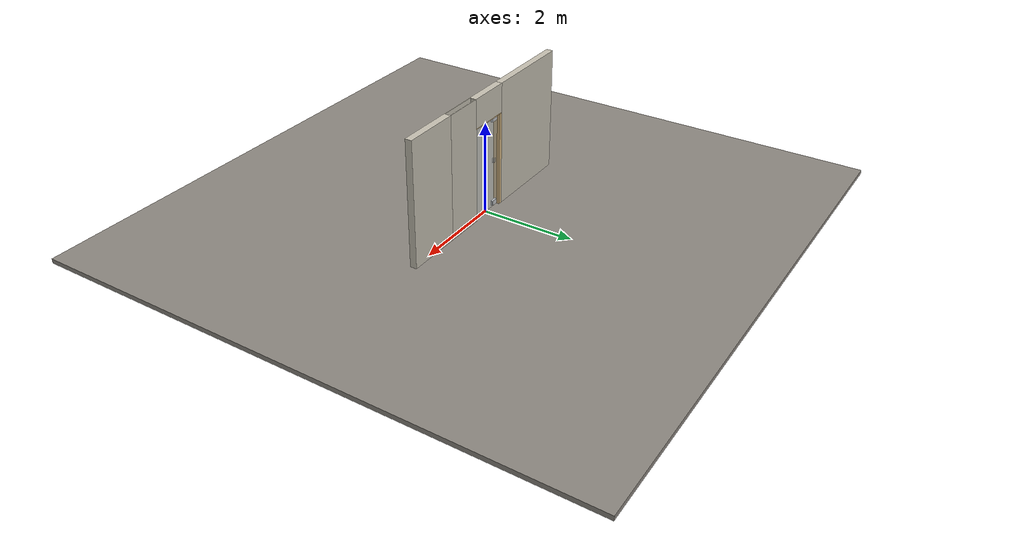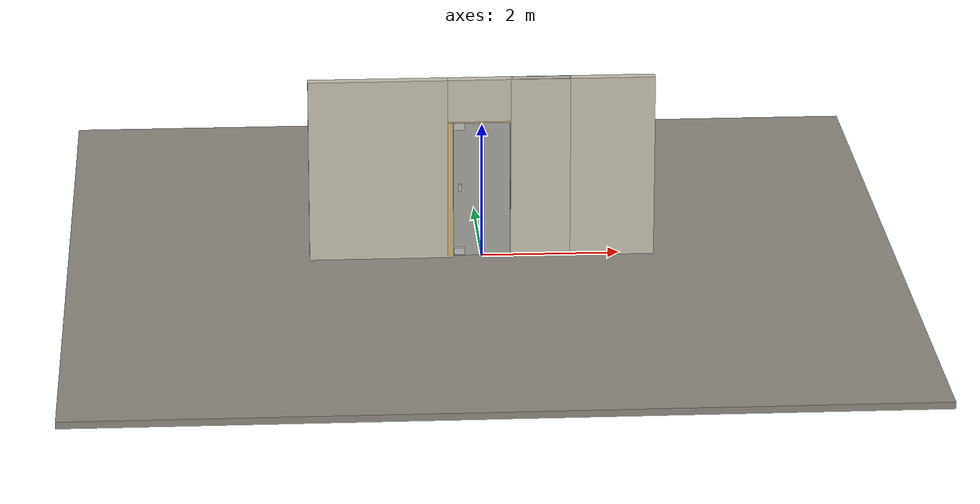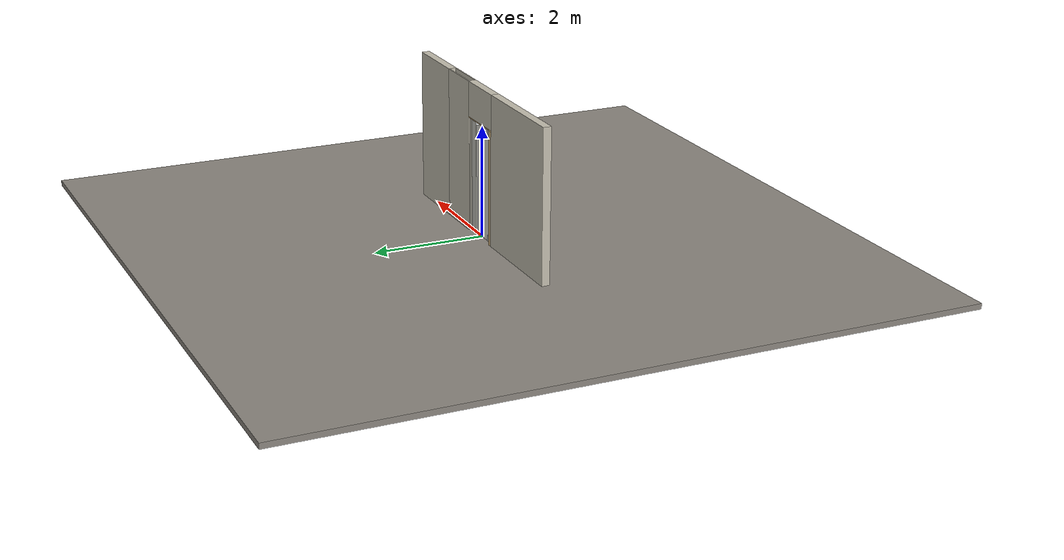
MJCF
<?xml version="1.0" ?>
<mujoco model="db0274_sliding_single_simple">
  <compiler angle="radian" meshdir="../../hardware" texturedir="../../textures" autolimits="true" inertiafromgeom="false"/>
  <option timestep="0.002" integrator="implicitfast" cone="elliptic" impratio="10" noslip_iterations="3">
    <flag multiccd="enable"/>
  </option>
  <size memory="16M"/>
  <default>
    <geom condim="4" solref="0.005 1" solimp="0.95 0.99 0.001"/>
    <joint solreflimit="0.005 1" solimplimit="0.95 0.99 0.001"/>
    <tendon solreflimit="0.005 1"/>
    <equality solref="0.002 1"/>
  </default>
  <visual>
    <headlight ambient="0.4 0.4 0.4" diffuse="0.7 0.7 0.7" specular="0.2 0.2 0.2"/>
    <quality shadowsize="4096"/>
    <map znear="0.01" zfar="60"/>
  </visual>
  <asset>
    <material name="mat_floor" rgba="0.55 0.53 0.5 1" specular="0.2" shininess="0.15" reflectance="0"/>
    <material name="mat_wall" rgba="0.78 0.76 0.7 1" specular="0.2" shininess="0.1" reflectance="0"/>
    <material name="mat_frame" rgba="0.82 0.7 0.5 1" specular="0.2" shininess="0.45" reflectance="0"/>
    <material name="mat_track" rgba="0.8 0.81 0.83 1" specular="0.8" shininess="0.6" reflectance="0.4"/>
    <material name="mat_leaf" rgba="0.85 0.92 0.95 0.25" specular="0.2" shininess="0.95" reflectance="0.1"/>
    <material name="mat_glass_leaf" rgba="0.85 0.92 0.95 0.25" specular="0.2" shininess="0.95" reflectance="0.1"/>
    <material name="mat_patch" rgba="0.75 0.76 0.77 1" specular="0.8" shininess="0.65" reflectance="0.4"/>
    <material name="mat_roller" rgba="0.65 0.66 0.68 1" specular="0.74" shininess="0.5" reflectance="0.36"/>
    <material name="mat_op_nickel_satin" rgba="0.72 0.7 0.66 1" specular="0.8" shininess="0.65" reflectance="0.4"/>
    <material name="mat_hook" rgba="0.75 0.76 0.77 1" specular="0.8" shininess="0.65" reflectance="0.4"/>
    <texture name="skybox" type="skybox" builtin="gradient" rgb1="0.6 0.7 0.85" rgb2="0.9 0.92 0.95" width="256" height="256"/>
  </asset>
  <worldbody>
    <light name="sun" pos="1.5 -2.5 4" dir="-0.3 0.5 -0.8" directional="true" diffuse="0.8 0.8 0.8" specular="0.3 0.3 0.3" castshadow="true"/>
    <light name="fill" pos="-1.5 2.5 3" dir="0.3 -0.5 -0.7" directional="true" diffuse="0.35 0.35 0.4" castshadow="false"/>
    <camera name="robot_view" pos="0 -2.54875 1.73965" xyaxes="1 0 0 0 0.26963 0.962964" fovy="52"/>
    <camera name="far_view" pos="0 2.54875 1.73965" xyaxes="-1 0 0 0 -0.26963 0.962964" fovy="52"/>
    <camera name="iso" pos="1.93705 -2.14095 2.14745" xyaxes="0.741536 0.670913 0 -0.242917 0.268487 0.932151" fovy="46"/>
    <camera name="detail_handle" pos="-0.1365 -0.8175 1.33" xyaxes="0.97561 0.219512 0 -0.070934 0.315262 0.94635" fovy="38"/>
    <geom name="floor" type="box" size="6 6 0.05" pos="0 0 -0.05" material="mat_floor" group="0" contype="1" conaffinity="1" friction="0.8 0.005 0.0001" density="2400"/>
    <geom name="wall_left" type="box" size="1.00225 0.0725 1.35" pos="-1.49775 0 1.35" material="mat_wall" group="0" contype="1" conaffinity="1" friction="0.6 0.005 0.0001" density="800"/>
    <geom name="wall_header" type="box" size="0.4655 0.0725 0.3145" pos="-0.03 0 2.3855" material="mat_wall" group="0" contype="1" conaffinity="1" friction="0.6 0.005 0.0001" density="800"/>
    <geom name="pocket_skin_n" type="box" size="0.4315 0.008 1.35" pos="0.848 -0.0645 1.35" material="mat_wall" group="0" contype="1" conaffinity="1" friction="0.6 0.005 0.0001" density="800"/>
    <geom name="pocket_skin_p" type="box" size="0.4315 0.008 1.35" pos="0.848 0.0645 1.35" material="mat_wall" group="0" contype="1" conaffinity="1" friction="0.6 0.005 0.0001" density="800"/>
    <geom name="wall_pocket_far" type="box" size="0.61025 0.0725 1.35" pos="1.88975 0 1.35" material="mat_wall" group="0" contype="1" conaffinity="1" friction="0.6 0.005 0.0001" density="800"/>
    <geom name="jamb_head" type="box" size="0.4355 0.0725 0.0095" pos="0 0 2.0615" material="mat_frame" group="0" contype="1" conaffinity="1" friction="0.6 0.005 0.0001" density="300"/>
    <geom name="track_header" type="box" size="0.8425 0.025 0.04" pos="0.386 0 2.111" material="mat_track" group="0" contype="1" conaffinity="1" friction="0.6 0.005 0.0001" density="2700"/>
    <geom name="jamb_latch_0" type="box" size="0.0395 0.0725 1.026" pos="-0.456 0 1.026" material="mat_frame" group="0" contype="1" conaffinity="1" friction="0.6 0.005 0.0001" density="300"/>
    <geom name="track_header_bracket" type="box" size="0.674 0.01625 0.032" pos="0.386 0.04075 2.111" material="mat_hook" group="1" contype="0" conaffinity="0" density="7850"/>
    <site name="approach_point" pos="0 -1.5 0" quat="1 0 0 0" size="0.05" rgba="0.2 0.9 0.2 0.5" group="4"/>
    <site name="goal_point" pos="0 1.5 0" quat="1 0 0 0" size="0.05" rgba="0.2 0.9 0.2 0.5" group="4"/>
    <site name="door_plane_center" pos="0 0 1.026" quat="1 0 0 0" size="0.02" rgba="0.2 0.9 0.2 0.5" group="4"/>
    <body name="leaf" pos="0 0 0">
      <inertial pos="-0.000511 0 1.02803" mass="30.968798" quat="0.500008 0.500008 0.499992 -0.499992" diaginertia="1.711260716 10.648401762 12.353319087"/>
      <joint name="leaf_slide" type="slide" axis="1 0 0" limited="true" range="0 0.772" damping="3.54844" frictionloss="4.737723" armature="0.5"/>
      <geom name="leaf_glass" type="box" size="0.4065 0.0175 1.016" pos="0 0 1.028" material="mat_glass_leaf" group="0" contype="1" conaffinity="1" friction="0.4 0.005 0.0001" density="1"/>
      <geom name="leaf_patch_bot" type="box" size="0.08 0.0255 0.05" pos="-0.3265 0 0.072" material="mat_patch" group="1" contype="0" conaffinity="0" density="1"/>
      <geom name="leaf_patch_top" type="box" size="0.08 0.0255 0.05" pos="-0.3265 0 1.984" material="mat_patch" group="1" contype="0" conaffinity="0" density="1"/>
      <geom name="leaf_pull_n" type="box" size="0.025 0.0005 0.05" pos="-0.3165 -0.018 1.05" material="mat_op_nickel_satin" group="1" contype="0" conaffinity="0" density="1000"/>
      <geom name="leaf_pull_p" type="box" size="0.025 0.0005 0.05" pos="-0.3165 0.018 1.05" material="mat_op_nickel_satin" group="1" contype="0" conaffinity="0" density="1000"/>
      <site name="leaf_pull_grip_n" pos="-0.3165 -0.0175 1.05" quat="1 0 0 0" size="0.012" rgba="0.2 0.9 0.2 0.5" group="4"/>
      <site name="leaf_pull_grip_p" pos="-0.3165 0.0175 1.05" quat="1 0 0 0" size="0.012" rgba="0.2 0.9 0.2 0.5" group="4"/>
      <site name="leaf_edge_mid" pos="-0.4065 0 1.028" quat="1 0 0 0" size="0.02" rgba="0.2 0.9 0.2 0.5" group="4"/>
    </body>
  </worldbody>
  <sensor>
    <jointpos name="leaf_slide_pos" joint="leaf_slide"/>
    <jointvel name="leaf_slide_vel" joint="leaf_slide"/>
  </sensor>
</mujoco>
